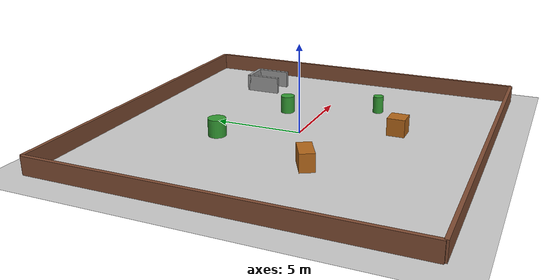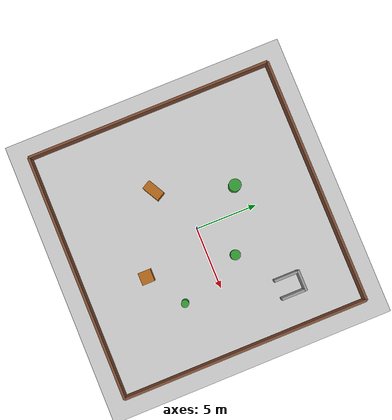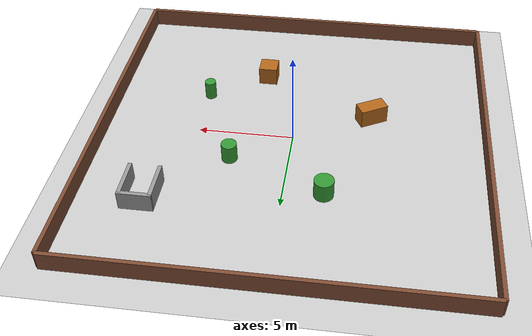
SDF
<?xml version="1.0" ?>
<sdf version="1.10">
  <world name="obstacles_simple">

    <physics name="1ms" type="ignored">
      <max_step_size>0.001</max_step_size>
      <real_time_factor>1.0</real_time_factor>
    </physics>

    <plugin filename="gz-sim-physics-system"
            name="gz::sim::systems::Physics"/>
    <plugin filename="gz-sim-user-commands-system"
            name="gz::sim::systems::UserCommands"/>
    <plugin filename="gz-sim-scene-broadcaster-system"
            name="gz::sim::systems::SceneBroadcaster"/>
    <plugin filename="gz-sim-sensors-system"
            name="gz::sim::systems::Sensors">
      <render_engine>ogre2</render_engine>
    </plugin>

    <light type="directional" name="sun">
      <cast_shadows>true</cast_shadows>
      <pose>0 0 10 0 0 0</pose>
      <diffuse>0.8 0.8 0.8 1</diffuse>
      <specular>0.2 0.2 0.2 1</specular>
      <direction>-0.5 0.1 -0.9</direction>
    </light>

    <model name="ground_plane">
      <static>true</static>
      <link name="link">
        <collision name="collision">
          <geometry><plane><normal>0 0 1</normal><size>100 100</size></plane></geometry>
        </collision>
        <visual name="visual">
          <geometry><plane><normal>0 0 1</normal><size>100 100</size></plane></geometry>
          <material><ambient>0.8 0.8 0.8 1</ambient><diffuse>0.8 0.8 0.8 1</diffuse></material>
        </visual>
      </link>
    </model>

    <!-- Paredes 20x20 -->
    <model name="wall_north">
      <static>true</static><pose>0 10 0.5 0 0 0</pose>
      <link name="link">
        <collision name="c"><geometry><box><size>20 0.2 1</size></box></geometry></collision>
        <visual name="v"><geometry><box><size>20 0.2 1</size></box></geometry>
          <material><ambient>0.5 0.3 0.2 1</ambient><diffuse>0.5 0.3 0.2 1</diffuse></material></visual>
      </link>
    </model>
    <model name="wall_south">
      <static>true</static><pose>0 -10 0.5 0 0 0</pose>
      <link name="link">
        <collision name="c"><geometry><box><size>20 0.2 1</size></box></geometry></collision>
        <visual name="v"><geometry><box><size>20 0.2 1</size></box></geometry>
          <material><ambient>0.5 0.3 0.2 1</ambient><diffuse>0.5 0.3 0.2 1</diffuse></material></visual>
      </link>
    </model>
    <model name="wall_east">
      <static>true</static><pose>10 0 0.5 0 0 0</pose>
      <link name="link">
        <collision name="c"><geometry><box><size>0.2 20 1</size></box></geometry></collision>
        <visual name="v"><geometry><box><size>0.2 20 1</size></box></geometry>
          <material><ambient>0.5 0.3 0.2 1</ambient><diffuse>0.5 0.3 0.2 1</diffuse></material></visual>
      </link>
    </model>
    <model name="wall_west">
      <static>true</static><pose>-10 0 0.5 0 0 0</pose>
      <link name="link">
        <collision name="c"><geometry><box><size>0.2 20 1</size></box></geometry></collision>
        <visual name="v"><geometry><box><size>0.2 20 1</size></box></geometry>
          <material><ambient>0.5 0.3 0.2 1</ambient><diffuse>0.5 0.3 0.2 1</diffuse></material></visual>
      </link>
    </model>

    <!-- Cilindros -->
    <model name="cyl_1">
      <static>true</static><pose>3 2 0.5 0 0 0</pose>
      <link name="link">
        <collision name="c"><geometry><cylinder><radius>0.4</radius><length>1</length></cylinder></geometry></collision>
        <visual name="v"><geometry><cylinder><radius>0.4</radius><length>1</length></cylinder></geometry>
          <material><ambient>0.2 0.6 0.2 1</ambient><diffuse>0.2 0.6 0.2 1</diffuse></material></visual>
      </link>
    </model>
    <model name="cyl_2">
      <static>true</static><pose>-2 4 0.5 0 0 0</pose>
      <link name="link">
        <collision name="c"><geometry><cylinder><radius>0.5</radius><length>1</length></cylinder></geometry></collision>
        <visual name="v"><geometry><cylinder><radius>0.5</radius><length>1</length></cylinder></geometry>
          <material><ambient>0.2 0.6 0.2 1</ambient><diffuse>0.2 0.6 0.2 1</diffuse></material></visual>
      </link>
    </model>
    <model name="cyl_3">
      <static>true</static><pose>5 -3 0.5 0 0 0</pose>
      <link name="link">
        <collision name="c"><geometry><cylinder><radius>0.3</radius><length>1</length></cylinder></geometry></collision>
        <visual name="v"><geometry><cylinder><radius>0.3</radius><length>1</length></cylinder></geometry>
          <material><ambient>0.2 0.6 0.2 1</ambient><diffuse>0.2 0.6 0.2 1</diffuse></material></visual>
      </link>
    </model>

    <!-- Caixas -->
    <model name="box_1">
      <static>true</static><pose>-4 -2 0.5 0 0 0.5</pose>
      <link name="link">
        <collision name="c"><geometry><box><size>1.5 0.8 1</size></box></geometry></collision>
        <visual name="v"><geometry><box><size>1.5 0.8 1</size></box></geometry>
          <material><ambient>0.7 0.4 0.1 1</ambient><diffuse>0.7 0.4 0.1 1</diffuse></material></visual>
      </link>
    </model>
    <model name="box_2">
      <static>true</static><pose>2 -5 0.5 0 0 0</pose>
      <link name="link">
        <collision name="c"><geometry><box><size>1 1 1</size></box></geometry></collision>
        <visual name="v"><geometry><box><size>1 1 1</size></box></geometry>
          <material><ambient>0.7 0.4 0.1 1</ambient><diffuse>0.7 0.4 0.1 1</diffuse></material></visual>
      </link>
    </model>

    <!-- Obstáculo em U (testa mínimo local do campo potencial) -->
    <model name="u_left">
      <static>true</static><pose>6 5 0.5 0 0 0</pose>
      <link name="link">
        <collision name="c"><geometry><box><size>0.2 2 1</size></box></geometry></collision>
        <visual name="v"><geometry><box><size>0.2 2 1</size></box></geometry>
          <material><ambient>0.6 0.6 0.6 1</ambient><diffuse>0.6 0.6 0.6 1</diffuse></material></visual>
      </link>
    </model>
    <model name="u_right">
      <static>true</static><pose>7.5 5 0.5 0 0 0</pose>
      <link name="link">
        <collision name="c"><geometry><box><size>0.2 2 1</size></box></geometry></collision>
        <visual name="v"><geometry><box><size>0.2 2 1</size></box></geometry>
          <material><ambient>0.6 0.6 0.6 1</ambient><diffuse>0.6 0.6 0.6 1</diffuse></material></visual>
      </link>
    </model>
    <model name="u_back">
      <static>true</static><pose>6.75 6 0.5 0 0 0</pose>
      <link name="link">
        <collision name="c"><geometry><box><size>1.7 0.2 1</size></box></geometry></collision>
        <visual name="v"><geometry><box><size>1.7 0.2 1</size></box></geometry>
          <material><ambient>0.6 0.6 0.6 1</ambient><diffuse>0.6 0.6 0.6 1</diffuse></material></visual>
      </link>
    </model>

  </world>
</sdf>
